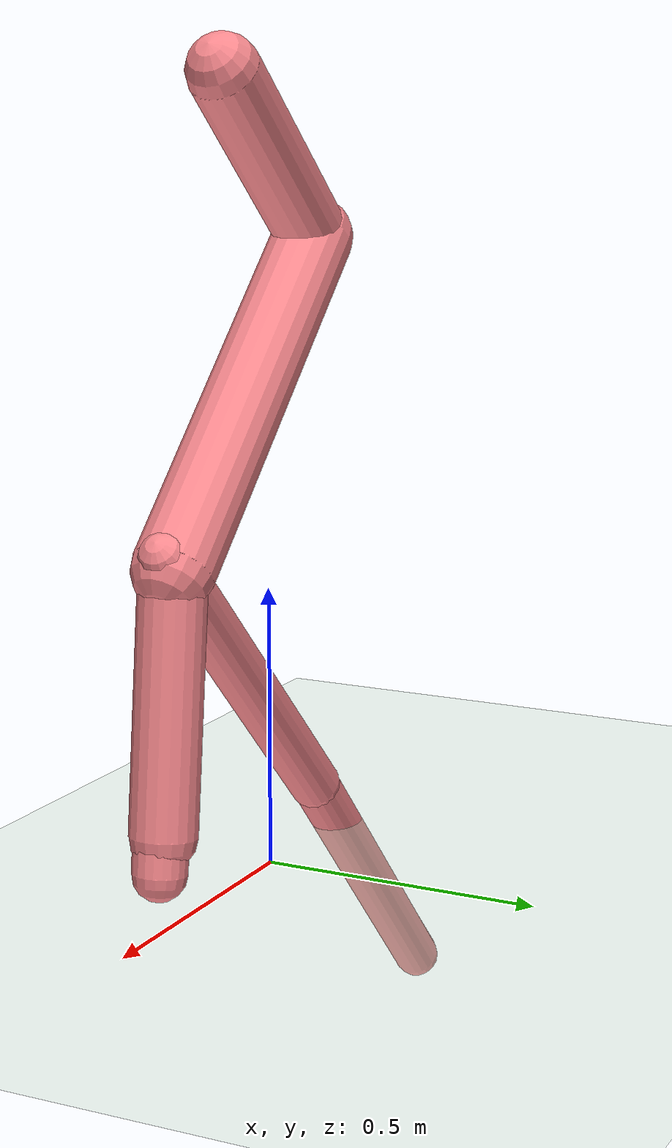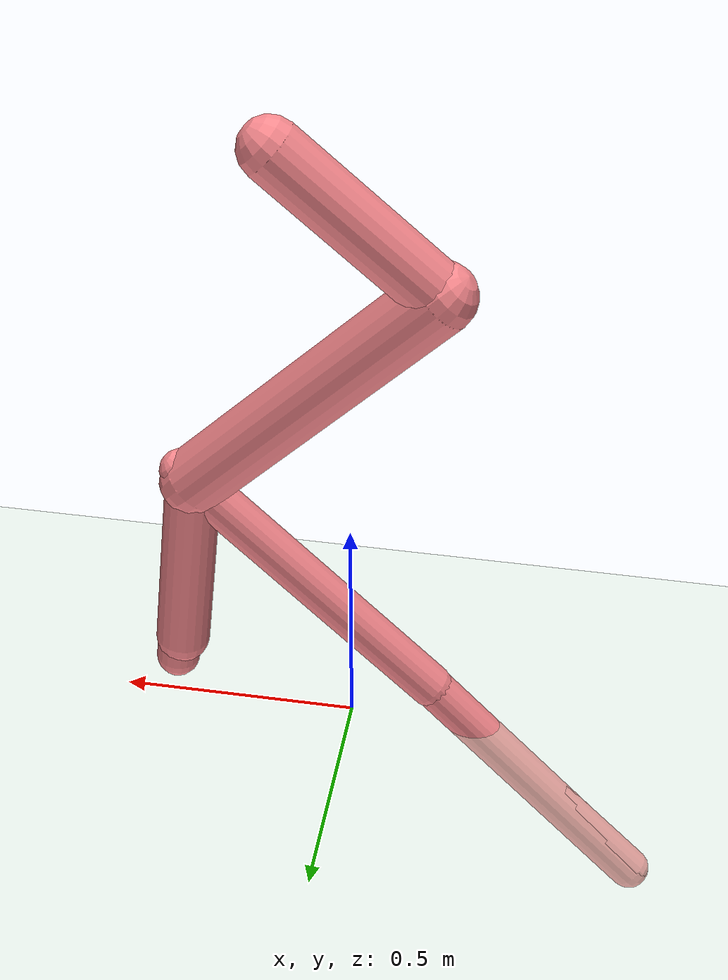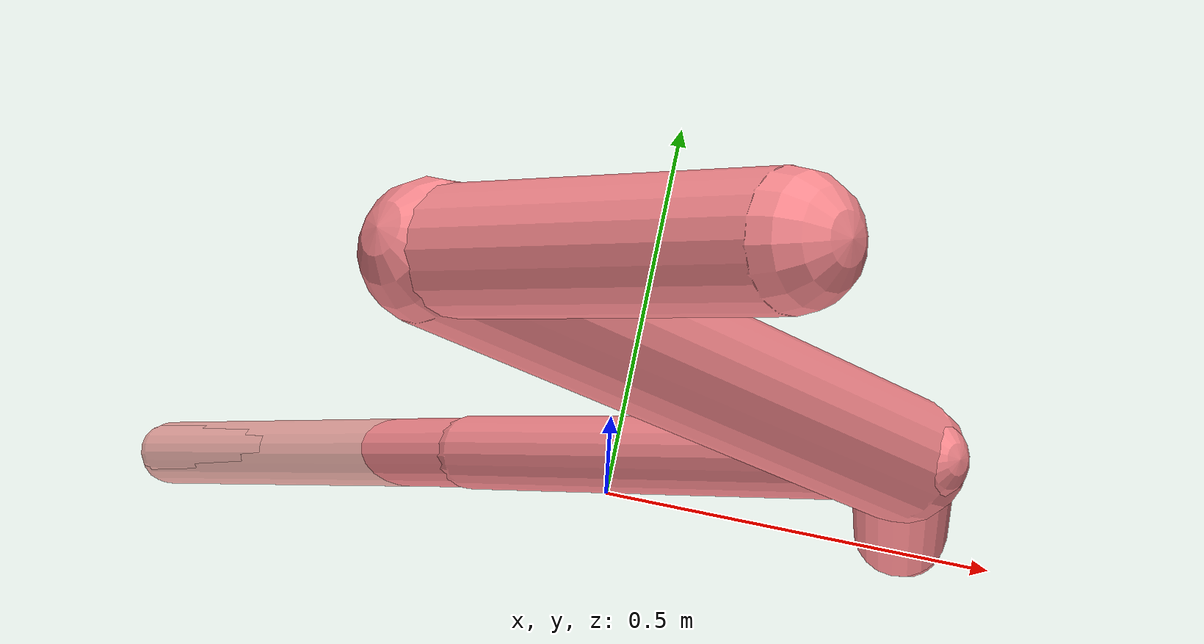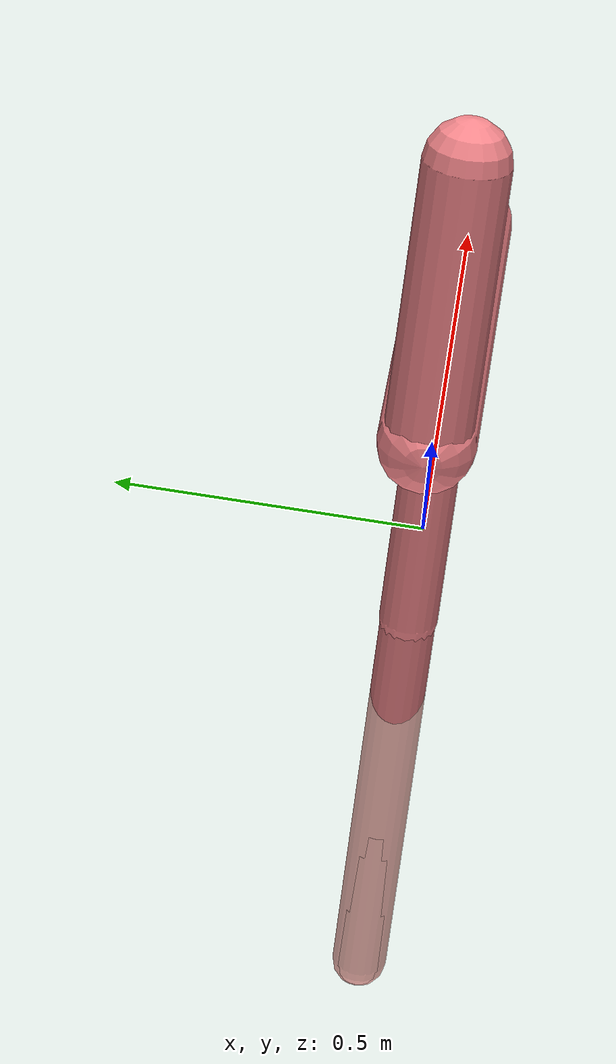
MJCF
<mujoco model="hopper">
  <compiler angle="degree" coordinate="global" inertiafromgeom="true"/>
  <default>
    <joint armature="1" damping="1" limited="true"/>
    <geom conaffinity="1" condim="1" contype="1" margin="0.001" rgba=".98 .54 .56 1." solimp=".8 .8 .01" solref=".02 1"/>
    <motor ctrllimited="true" ctrlrange="-.4 .4"/>
  </default>
  <option integrator="RK4" timestep="0.002"/>
  <visual>
    <headlight ambient=".1 .1 .1" diffuse=".6 .6 .6" specular="0.3 0.3 0.3"/>
    <map znear=".01"/>
    <quality shadowsize="16384"/>
  </visual>
  <worldbody>
    <light cutoff="100" diffuse="1 1 1" dir="-1 0 -1.3" directional="true" exponent="1" pos="1 0 1.3" specular=".1 .1 .1" castshadow="true"/>
    <geom conaffinity="1" condim="3" name="floor" pos="0 0 0" rgba="0.8 0.9 0.8 1" size="200 200 .125" type="plane" material="grid_new"/>
    <body name="0" pos="0 0 1.25">
      <camera name="track" mode="trackcom" pos="0 -3 1" xyaxes="1 0 0 0 0 1"/>
      <joint armature="0" axis="1 0 0" damping="0" limited="false" name="rootx" pos="0 0 0" stiffness="0" type="slide"/>
      <joint armature="0" axis="0 0 1" damping="0" limited="false" name="rootz" pos="0 0 0" ref="1.25" stiffness="0" type="slide"/>
      <joint armature="0" axis="0 1 0" damping="0" limited="false" name="0_joint" pos="0 0 1.25" stiffness="0" type="hinge"/>
      <geom friction="0.9" fromto="0.140289 0 1.374509 -0.175622 0 1.094132" size="0.062443" type="capsule"/>
      <body name="1" pos="-0.175622 0 1.094132">
        <joint axis="0 -1 0" name="1_joint" pos="-0.175622 0 1.094132" range="-360 360" type="hinge"/>
        <geom friction="2.0" fromto="-0.175635 0 1.094145 0.322283 0 0.594137" size="0.06981" type="capsule"/>
        <body name="11" pos="0.322283 0 0.594137">
          <joint axis="0 -1 0" name="11_joint" pos="0.322283 0 0.594137" range="-360 360" type="hinge"/>
          <geom friction="2.0" fromto="0.34485 0 0.616775 -0.174678 0 0.095598" size="0.04631" type="capsule"/>
          <body name="111" pos="-0.174678 0 0.095598">
            <joint axis="0 -1 0" name="111_joint" pos="-0.174678 0 0.095598" range="-360 360" type="hinge"/>
            <geom friction="2.0" fromto="-0.165387 0 0.105707 -0.633981 0 -0.404146" size="0.043879" type="capsule"/>
          </body>
          <body name="211" pos="-0.174678 0 0.095598">
            <joint axis="0 -1 0" name="211_joint" pos="-0.174678 0 0.095598" range="-360 360" type="hinge"/>
            <geom friction="2.0" fromto="-0.135625 0 0.136943 -0.639456 0 -0.396456" size="0.038406" type="capsule"/>
          </body>
        </body>
        <body name="21" pos="0.322283 0 0.594137">
          <joint axis="0 -1 0" name="21_joint" pos="0.322283 0 0.594137" range="-360 360" type="hinge"/>
          <geom friction="2.0" fromto="0.322135 0 0.595537 0.367958 0 0.162161" size="0.057456" type="capsule"/>
        </body>
        <body name="31" pos="0.322283 0 0.594137">
          <joint axis="0 -1 0" name="31_joint" pos="0.322283 0 0.594137" range="-360 360" type="hinge"/>
          <geom friction="2.0" fromto="0.322239 0 0.594502 0.381888 0 0.102961" size="0.046639" type="capsule"/>
        </body>
      </body>
    </body>
  </worldbody>
  <actuator>
    <motor ctrllimited="true" ctrlrange="-1.0 1.0" gear="310.839128" joint="1_joint" name="1_joint"/>
    <motor ctrllimited="true" ctrlrange="-1.0 1.0" gear="349.392259" joint="11_joint" name="11_joint"/>
    <motor ctrllimited="true" ctrlrange="-1.0 1.0" gear="357.22203" joint="21_joint" name="21_joint"/>
    <motor ctrllimited="true" ctrlrange="-1.0 1.0" gear="104.272966" joint="111_joint" name="111_joint"/>
    <motor ctrllimited="true" ctrlrange="-1.0 1.0" gear="398.945873" joint="31_joint" name="31_joint"/>
    <motor ctrllimited="true" ctrlrange="-1.0 1.0" gear="151.18169" joint="211_joint" name="211_joint"/>
  </actuator>
  <asset>
    <texture type="skybox" builtin="gradient" rgb1=".4 .5 .6" rgb2="0 0 0" width="100" height="100"/>
    <texture builtin="flat" height="1278" mark="cross" markrgb="1 1 1" name="texgeom" random="0.01" rgb1="0.8 0.6 0.4" rgb2="0.8 0.6 0.4" type="cube" width="127"/>
    <texture builtin="checker" height="100" name="texplane" rgb1="0 0 0" rgb2="0.8 0.8 0.8" type="2d" width="100"/>
    <material name="MatPlane" reflectance="0.5" shininess="1" specular="1" texrepeat="60 60" texture="texplane"/>
    <material name="geom" texture="texgeom" texuniform="true"/>
    <texture name="grid_new" type="2d" builtin="checker" rgb1=".1 .3 .2" rgb2=".2 .4 .3" width="1000" height="1000" mark="none" markrgb=".8 .6 .4"/>
    <material name="grid_new" texture="grid_new" texrepeat="0.2 0.2" texuniform="true" reflectance=".2"/>
  </asset>
</mujoco>
